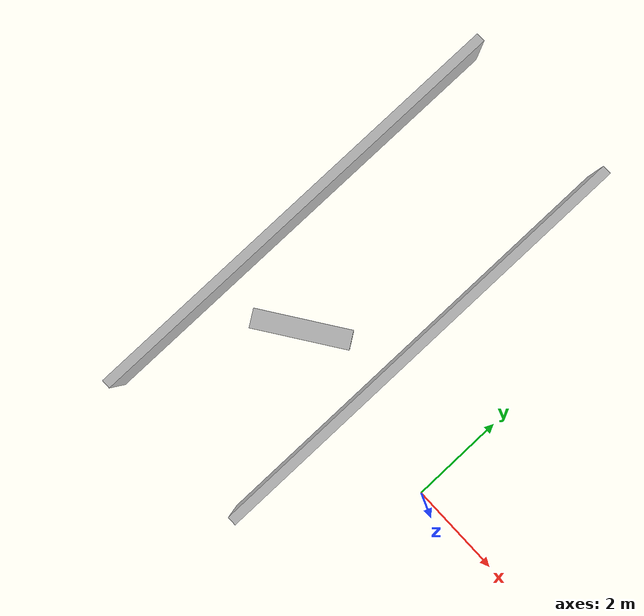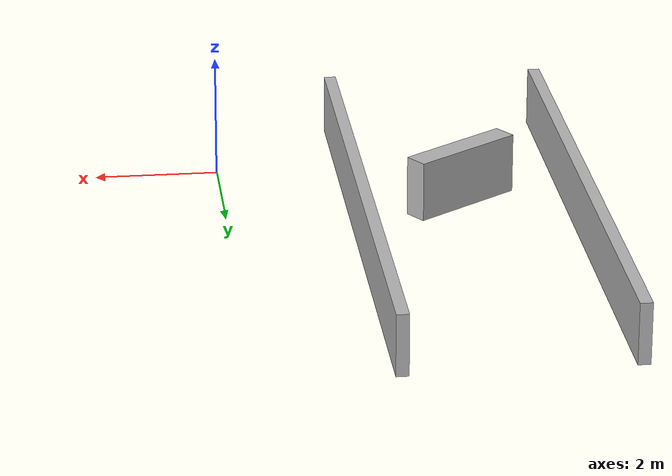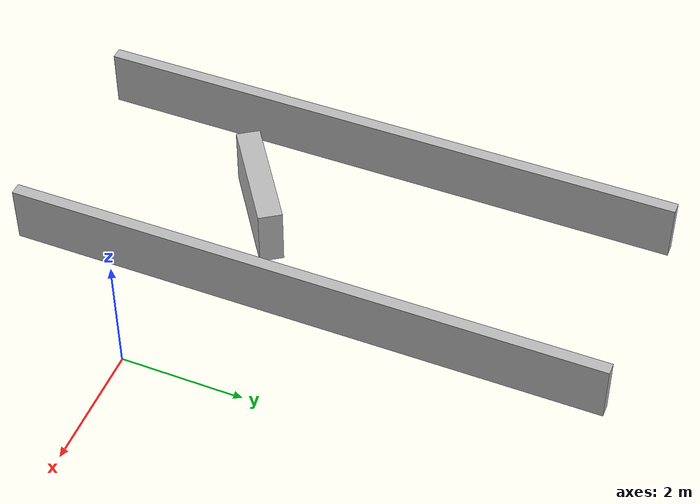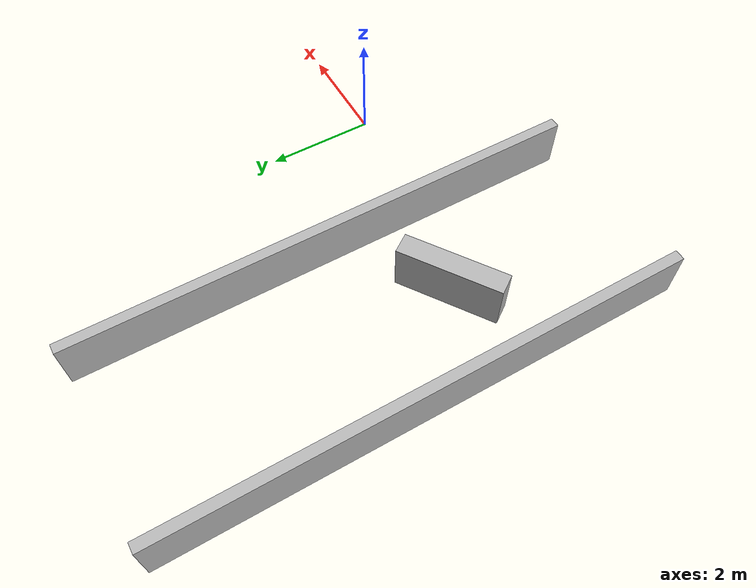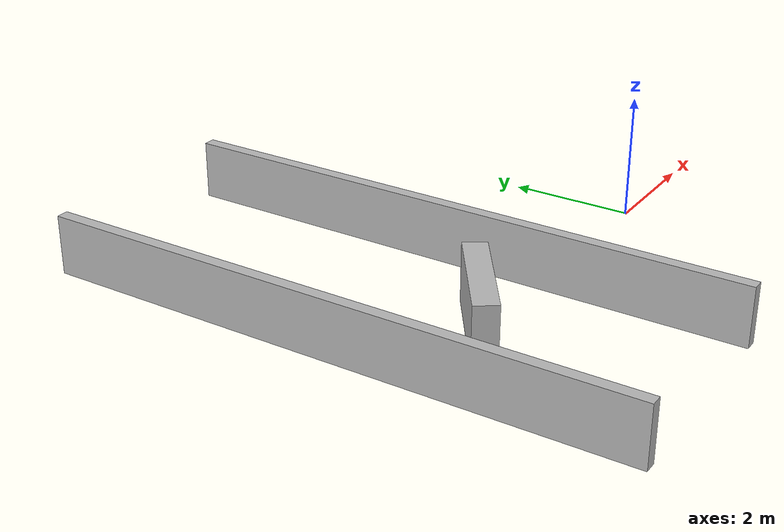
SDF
<?xml version="1.0"?>
<sdf version="1.4">
  <world name="racecar_walker">

    <scene>
      <ambient>0.5 0.5 0.5 1.0</ambient>
      <shadows>0</shadows>
    </scene>

    <include>
      <uri>model://sun</uri>
      <pose>0.0 0.0 15.0 0 0 0</pose>
      <cast_shadows>false</cast_shadows>
      <attenuation>
        <constant>0.5</constant>
        <linear>0.01</linear>
        <quadratic>0.0</quadratic>
        <range>100</range>
      </attenuation>
    </include>

    <light type="point" name="Light 1">
      <pose>0 0 15 0 0 0</pose>
      <diffuse>.9 .9 .9 1</diffuse>
      <specular>.1 .1 .1 1</specular>
      <attenuation>
        <constant>0.5</constant>
        <linear>0.01</linear>
        <quadratic>0.0</quadratic>
        <range>50</range>
      </attenuation>
      <direction>0 0 -1</direction>
      <cast_shadows>false</cast_shadows>
    </light>

    <include>
      <uri>model://racecar_description/models/walker_racecourse</uri>
      <pose>-4 2 -.5 0 0 -1.57</pose>
      <name>walker_racecourse</name>
    </include>

    <gui fullscreen='0'>
      <camera name='user_camera'>
        <pose>24.3814 -7.70217 10.2123 0 0.331643 2.86019</pose>
        <view_controller>orbit</view_controller>
        <projection_type>perspective</projection_type>
      </camera>
    </gui>
  </world>
</sdf>

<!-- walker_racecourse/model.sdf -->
<sdf version="1.6">
  <model name="walker_racecourse">
    <static>true</static>
    <link name="wall_a">
      <pose>0 -1.8 0.5 0 0 0</pose>
      <collision name="collision"><geometry><box><size>10 0.2 1</size></box></geometry></collision>
      <visual name="visual"><geometry><box><size>10 0.2 1</size></box></geometry></visual>
    </link>
    <link name="wall_b">
      <pose>0 1.8 0.5 0 0 0</pose>
      <collision name="collision"><geometry><box><size>10 0.2 1</size></box></geometry></collision>
      <visual name="visual"><geometry><box><size>10 0.2 1</size></box></geometry></visual>
    </link>
    <link name="barrier">
      <pose>1.5 0 0.5 0 0 0.6</pose>
      <collision name="collision"><geometry><box><size>0.4 2.0 1</size></box></geometry></collision>
      <visual name="visual"><geometry><box><size>0.4 2.0 1</size></box></geometry></visual>
    </link>
  </model>
</sdf>
